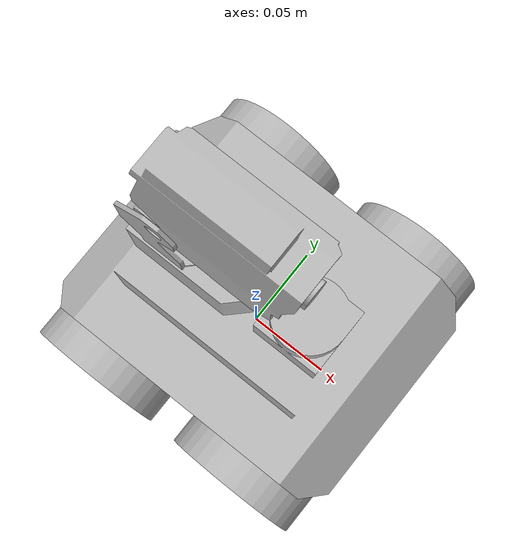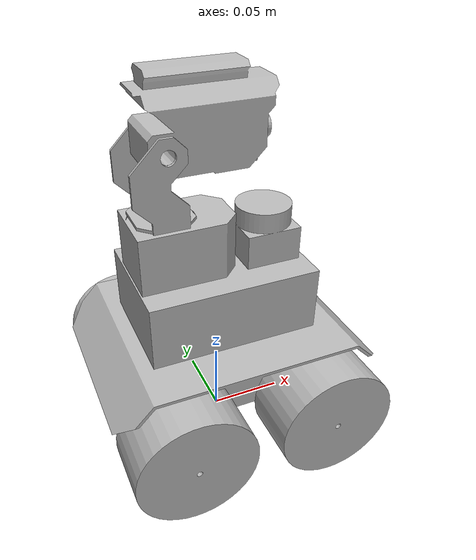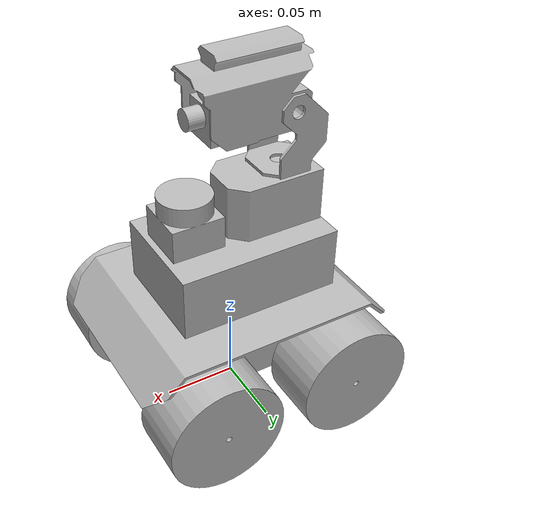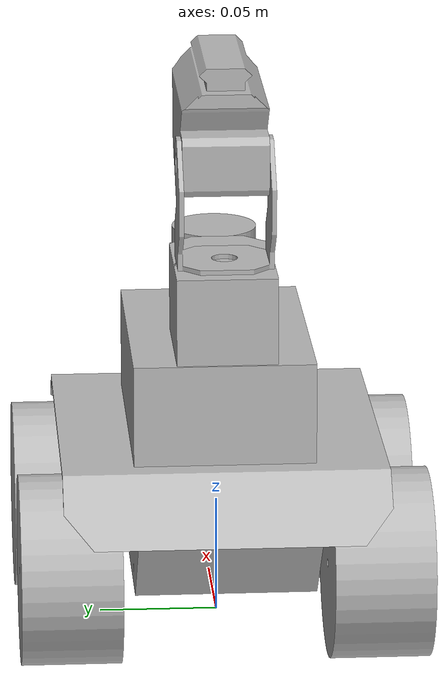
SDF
<?xml version='1.0'?>
<sdf version='1.5'>
  <model name='rasp_rover'>
   <pose>0.0 0.0 0.0 0.0 0.0 0</pose>

  <link name='base_footprint'/>

  <link name='base_link'>
    <inertial>
      <pose relative_to='base_joint'>0 0 0 0 0 0</pose>
      <mass>2.78375064359473</mass>
      <inertia>
        <ixx>0.00651567554169617</ixx>
        <ixy>-5.86655425789789E-13</ixy>
        <ixz>3.77886436056975E-05</ixz>
        <iyy>0.00933991752413667</iyy>
        <iyz>-2.53116742521487E-11</iyz>
        <izz>0.0121583506563461</izz>
       </inertia>
    </inertial>
    <visual name='base_link_visual'>
      <pose relative_to='base_joint'>0 0 0 0 0 0</pose>
      <geometry>
          <mesh>
            <scale>1 1 1</scale>
            <uri>model://ugv_description/meshes/rasp_rover/base_link.stl</uri>
          </mesh>
      </geometry>
    </visual>
    <collision name='base_link_collision'>
      <pose relative_to='base_joint'>0 0 0 0 0 0</pose>
      <geometry>
          <mesh>
            <scale>1 1 1</scale>
            <uri>model://ugv_description/meshes/rasp_rover/base_link.stl</uri>
          </mesh>
      </geometry>
    </collision>
  </link>

  <link name='base_imu_link'>
    <pose relative_to='imu_joint'>0 0 0 0 0 0</pose>
     <sensor name='ugv_imu' type='imu'>
        <always_on>true</always_on>
        <update_rate>20</update_rate>
         <imu>
          <angular_velocity>
            <x>
              <noise type='gaussian'>
                <mean>0.0</mean>
                <stddev>2e-4</stddev>
              </noise>
            </x>
            <y>
              <noise type='gaussian'>
                <mean>0.0</mean>
                <stddev>2e-4</stddev>
              </noise>
            </y>
            <z>
              <noise type='gaussian'>
                <mean>0.0</mean>
                <stddev>2e-4</stddev>
              </noise>
            </z>
          </angular_velocity>
          <linear_acceleration>
            <x>
              <noise type='gaussian'>
                <mean>0.0</mean>
                <stddev>1.7e-2</stddev>
              </noise>
            </x>
            <y>
              <noise type='gaussian'>
                <mean>0.0</mean>
                <stddev>1.7e-2</stddev>
              </noise>
            </y>
            <z>
              <noise type='gaussian'>
                <mean>0.0</mean>
                <stddev>1.7e-2</stddev>
              </noise>
            </z>
          </linear_acceleration>
        </imu>
        <plugin filename='libgazebo_ros_imu_sensor.so' name='imu_plugin'>
          <ros>
             <remapping>~/out:=imu</remapping>
          </ros>
        </plugin>
      </sensor>
  </link>

  <link name='left_up_wheel_link'>
  <pose relative_to='left_up_wheel_link_joint'>0 0 0 0 -0 0</pose>
        <inertial>
          <pose>-0 0.02679 0 0 -0 0</pose>
          <mass>0.210587</mass>
          <inertia>
            <ixx>0.000115402</ixx>
            <ixy>-1.32502e-18</ixy>
            <ixz>-4.34981e-35</ixz>
            <iyy>0.000168891</iyy>
            <iyz>2.37169e-21</iyz>
            <izz>0.000115402</izz>
          </inertia>
        </inertial>
    <visual name='left_up_wheel_link_visual'>
      <pose>0 0 0 0 -0 0</pose>
      <geometry>
          <mesh>
            <scale>1 1 1</scale>
            <uri>model://ugv_description/meshes/rasp_rover/left_up_wheel_link.stl</uri>
          </mesh>
      </geometry>
    </visual>
    <collision name='left_up_wheel_link_collision'>
      <pose>0 0 0 0 -0 0</pose>
      <geometry>
          <mesh>
            <scale>1 1 1</scale>
            <uri>model://ugv_description/meshes/rasp_rover/left_up_wheel_link.stl</uri>
          </mesh>
      </geometry>
    </collision>
  </link>

  <link name='left_down_wheel_link'>
        <pose relative_to='left_down_wheel_link_joint'>0 0 0 0 -0 0</pose>
        <inertial>
          <pose>-0 0.02679 0 0 -0 0</pose>
          <mass>0.210587</mass>
          <inertia>
            <ixx>0.000115402</ixx>
            <ixy>-1.32809e-18</ixy>
            <ixz>1.27629e-32</ixz>
            <iyy>0.000168891</iyy>
            <iyz>-5.16307e-19</iyz>
            <izz>0.000115402</izz>
          </inertia>
        </inertial>
    <visual name='left_down_wheel_link_visual'>
      <pose>0 0 0 0 -0 0</pose>
      <geometry>
          <mesh>
            <scale>1 1 1</scale>
            <uri>model://ugv_description/meshes/rasp_rover/left_down_wheel_link.stl</uri>
          </mesh>
      </geometry>
    </visual>
    <collision name='left_down_wheel_link_collision'>
      <pose>0 0 0 0 -0 0</pose>
      <geometry>
          <mesh>
            <scale>1 1 1</scale>
            <uri>model://ugv_description/meshes/rasp_rover/left_down_wheel_link.stl</uri>
          </mesh>
      </geometry>
    </collision>
  </link>

  <link name='right_up_wheel_link'>
        <pose relative_to='right_up_wheel_link_joint'>0 0 0 0 -0 0</pose>
        <inertial>
          <pose>0 -0.02679 0 0 -0 0</pose>
          <mass>0.210587</mass>
          <inertia>
            <ixx>0.000115402</ixx>
            <ixy>-1.32502e-18</ixy>
            <ixz>-4.34981e-35</ixz>
            <iyy>0.000168891</iyy>
            <iyz>2.37169e-21</iyz>
            <izz>0.000115402</izz>
          </inertia>
        </inertial>
    <visual name='right_up_wheel_link_visual'>
      <pose>0 0 0 0 -0 0</pose>
      <geometry>
          <mesh>
            <scale>1 1 1</scale>
            <uri>model://ugv_description/meshes/rasp_rover/right_up_wheel_link.stl</uri>
          </mesh>
      </geometry>
    </visual>
    <collision name='right_up_wheel_link_collision'>
      <pose>0 0 0 0 -0 0</pose>
      <geometry>
          <mesh>
            <scale>1 1 1</scale>
            <uri>model://ugv_description/meshes/rasp_rover/right_up_wheel_link.stl</uri>
          </mesh>
      </geometry>
    </collision>
  </link>

  <link name='right_down_wheel_link'>
        <pose relative_to='right_down_wheel_link_joint'>0 0 0 0 -0 0</pose>
        <inertial>
          <pose>0 -0.02679 0 0 -0 0</pose>
          <mass>0.210587</mass>
          <inertia>
            <ixx>0.000115402</ixx>
            <ixy>-1.32502e-18</ixy>
            <ixz>1.27637e-32</ixz>
            <iyy>0.000168891</iyy>
            <iyz>-5.18688e-19</iyz>
            <izz>0.000115402</izz>
          </inertia>
        </inertial>
    <visual name='right_down_wheel_link_visual'>
      <pose>0 0 0 0 -0 0</pose>
      <geometry>
          <mesh>
            <scale>1 1 1</scale>
            <uri>model://ugv_description/meshes/rasp_rover/right_down_wheel_link.stl</uri>
          </mesh>
      </geometry>
    </visual>
    <collision name='right_down_wheel_link_collision'>
      <pose>0 0 0 0 -0 0</pose>
      <geometry>
          <mesh>
            <scale>1 1 1</scale>
            <uri>model://ugv_description/meshes/rasp_rover/right_down_wheel_link.stl</uri>
          </mesh>
      </geometry>
    </collision>
  </link>

  <link name='base_lidar_link'>
  <pose relative_to='base_lidar_link_joint'>0 0 0 0 -0 0</pose>
    <inertial>
      <pose>0 0 0 0 -0 0</pose>
      <mass>0.0418000091653573</mass>
      <inertia>
        <ixx>8.26853377699878E-06</ixx>
        <ixy>-2.32283058129169E-22</ixy>
        <ixz>-3.51417304718746E-22</ixz>
        <iyy>8.26853377699876E-06</iyy>
        <iyz>2.66754484573224E-23</iyz>
        <izz>8.32524607487378E-06</izz>
       </inertia>
    </inertial>
    <visual name='base_lidar_link_visual'>
      <pose>0 0 0 0 -0 0</pose>
      <geometry>
          <mesh>
            <scale>1 1 1</scale>
            <uri>model://ugv_description/meshes/rasp_rover/base_lidar_link.stl</uri>
          </mesh>
      </geometry>
    </visual>
    <collision name='base_lidar_link_collision'>
      <pose>0 0 0 0 -0 0</pose>
      <geometry>
          <mesh>
            <scale>1 1 1</scale>
            <uri>model://ugv_description/meshes/rasp_rover/base_lidar_link.stl</uri>
          </mesh>
      </geometry>
    </collision>

    <sensor name='hls_lfcd_lds' type='ray'>
        <always_on>true</always_on>
        <visualize>true</visualize>
        <pose>0 0 0.04 0 -0 0</pose>
        <update_rate>10</update_rate>
        <ray>
          <scan>
            <horizontal>
              <samples>360</samples>
              <resolution>1.000000</resolution>
              <min_angle>0.000000</min_angle>
              <max_angle>6.280000</max_angle>
            </horizontal>
          </scan>
          <range>
            <min>0.160000</min>
            <max>3.5</max>
            <resolution>0.015000</resolution>
          </range>
          <noise>
            <type>gaussian</type>
            <mean>0.0</mean>
            <stddev>0.01</stddev>
          </noise>
        </ray>
        <plugin name='ugv_laserscan' filename='libgazebo_ros_ray_sensor.so'>
          <ros>
            <remapping>~/out:=scan</remapping>
          </ros>
          <output_type>sensor_msgs/LaserScan</output_type>
          <frame_name>base_lidar_link</frame_name>
        </plugin>
      </sensor>
  </link>

  <link name='pt_base_link'>
  <pose relative_to='pt_base_link_joint'>0 0 0 0 -0 0</pose>
    <inertial>
      <pose>0 0 0 0 -0 0</pose>
      <mass>0.109518186442022</mass>
      <inertia>
        <ixx>3.30168147078049E-05</ixx>
        <ixy>-2.724587071518E-18</ixy>
        <ixz>-2.93137934608679E-06</ixz>
        <iyy>5.1580984319637E-05</iyy>
        <iyz>-6.32568066032632E-18</iyz>
        <izz>4.86101329827052E-05</izz>
       </inertia>
    </inertial>
    <visual name='pt_base_link_visual'>
      <pose>0 0 0 0 -0 0</pose>
      <geometry>
          <mesh>
            <scale>1 1 1</scale>
            <uri>model://ugv_description/meshes/rasp_rover/pt_base_link.stl</uri>
          </mesh>
      </geometry>
    </visual>
    <collision name='pt_base_link_collision'>
      <pose>0 0 0 0 -0 0</pose>
      <geometry>
          <mesh>
            <scale>1 1 1</scale>
            <uri>model://ugv_description/meshes/rasp_rover/pt_base_link.stl</uri>
          </mesh>
      </geometry>
    </collision>
  </link>

  <link name='pt_link1'>
  <pose relative_to='pt_base_link_to_pt_link1'>0 0 0 0 -0 0</pose>
    <inertial>
    <pose>-0.003381 0 0.01761 0 -0 0</pose>
      <mass>0.00710917409663916</mass>
      <inertia>
        <ixx>3.89716322571471E-06</ixx>
        <ixy>-3.20607036006508E-19</ixy>
        <ixz>2.32919366130509E-07</ixz>
        <iyy>2.4980668051168E-06</iyy>
        <iyz>-2.87650001968868E-19</iyz>
        <izz>2.60402792588347E-06</izz>
      </inertia>
    </inertial>
    <visual name='pt_link1_visual'>
      <pose>0 0 0 0 -0 0</pose>
      <geometry>
          <mesh>
            <scale>1 1 1</scale>
            <uri>model://ugv_description/meshes/rasp_rover/pt_link1.stl</uri>
          </mesh>
      </geometry>
    </visual>
    <collision name='pt_link1_collision'>
      <pose>0 0 0 0 -0 0</pose>
      <geometry>
          <mesh>
            <scale>1 1 1</scale>
            <uri>model://ugv_description/meshes/rasp_rover/pt_link1.stl</uri>
          </mesh>
      </geometry>
    </collision>
  </link>

  <link name='pt_link2'>
        <pose relative_to='pt_link1_to_pt_link2'>0 0 0 0 -0 0</pose>
        <inertial>
          <pose>0.023763 0.01126 0.02 0 -0 0</pose>
          <mass>0.103286</mass>
          <inertia>
            <ixx>3.20126e-05</ixx>
            <ixy>1.18182e-06</ixy>
            <ixz>8.05374e-13</ixz>
            <iyy>4.3875e-05</iyy>
            <iyz>-2.49463e-13</iyz>
            <izz>5.67494e-05</izz>
          </inertia>
        </inertial>
    <visual name='pt_link2_visual'>
      <pose>0 0 0 0 -0 0</pose>
      <geometry>
          <mesh>
            <scale>1 1 1</scale>
            <uri>model://ugv_description/meshes/rasp_rover/pt_link2.stl</uri>
          </mesh>
      </geometry>
    </visual>
    <collision name='pt_link2_collision'>
      <pose>0 0 0 0 -0 0</pose>
      <geometry>
          <mesh>
            <scale>1 1 1</scale>
            <uri>model://ugv_description/meshes/rasp_rover/pt_link2.stl</uri>
          </mesh>
      </geometry>
    </collision>
  </link>

  <link name='pt_camera_link'>
  <pose relative_to='pt_link2_to_pt_camera_link'>0 0 0 0 -0 0</pose>
    <inertial>
      <pose>0 0 0 0 -0 0</pose>
      <mass>0.00623651844028495</mass>
      <inertia>
        <ixx>5.11295942352593E-07</ixx>
        <ixy>3.46495200123478E-22</ixy>
        <ixz>-4.00917493406375E-08</ixz>
        <iyy>3.99078324787848E-07</iyy>
        <iyz>1.31404415819798E-22</iyz>
        <izz>4.02518684222241E-07</izz>
      </inertia>
    </inertial>
    <visual name='pt_camera_link_visual'>
      <pose>0 0 0 0 -0 0</pose>
      <geometry>
          <mesh>
            <scale>1 1 1</scale>
            <uri>model://ugv_description/meshes/rasp_rover/pt_camera_link.stl</uri>
          </mesh>
      </geometry>
    </visual>
    <collision name='pt_camera_link_collision'>
      <pose>0 0 0 0 -0 0</pose>
      <geometry>
          <mesh>
            <scale>1 1 1</scale>
            <uri>model://ugv_description/meshes/rasp_rover/pt_camera_link.stl</uri>
          </mesh>
      </geometry>
    </collision>
      <sensor name="pt_camera" type="camera">
        <pose>0 0 0 0 -0 0</pose>
        <always_on>true</always_on>
        <visualize>true</visualize>
        <update_rate>30</update_rate>
        <camera name="intel_realsense_r200">
          <horizontal_fov>1.02974</horizontal_fov>
          <image>
            <width>640</width>
            <height>480</height>
            <format>R8G8B8</format>
          </image>
          <clip>
            <near>0.02</near>
            <far>300</far>
          </clip>
          <noise>
            <type>gaussian</type>
            <mean>0.0</mean>
            <stddev>0.007</stddev>
          </noise>
        </camera>
          <plugin name="pt_camera_driver" filename="libgazebo_ros_camera.so">
            <ros>
            </ros>
          </plugin>
      </sensor>
  </link>

  <joint name='base_joint' type='fixed'>
    <pose relative_to='base_footprint'>0.00046 0 0.03 0 -0 0</pose>
    <parent>base_footprint</parent>
    <child>base_link</child>
  </joint>

  <joint name='imu_joint' type='fixed'>
      <parent>base_footprint</parent>
      <child>base_imu_link</child>
      <pose relative_to='base_footprint'>0.00046 0 0.08 0 -0 0</pose>
  </joint>

  <joint name='left_up_wheel_link_joint' type='revolute'>
    <pose relative_to='base_footprint'>0.049926 0.03801 0.036748 0 -0 0</pose>
      <parent>base_footprint</parent>
    <child>left_up_wheel_link</child>
       <axis>
        <xyz>0 0 -1</xyz>
      </axis>
  </joint>

  <joint name='left_down_wheel_link_joint' type='revolute'>
    <pose relative_to='base_footprint'>-0.047072 0.03801 0.036748 0 -0 0</pose>
      <parent>base_footprint</parent>
    <child>left_down_wheel_link</child>
       <axis>
        <xyz>0 0 -1</xyz>
      </axis>
  </joint>

  <joint name='right_up_wheel_link_joint' type='revolute'>
    <pose relative_to='base_footprint'>0.049926 -0.03801 0.036748 0 -0 0</pose>
      <parent>base_footprint</parent>
    <child>right_up_wheel_link</child>
       <axis>
        <xyz>0 0 -1</xyz>
      </axis>
  </joint>

  <joint name='right_down_wheel_link_joint' type='revolute'>
    <pose relative_to='base_footprint'>-0.047072 -0.03801 0.036748 0 -0 0</pose>
      <parent>base_footprint</parent>
    <child>right_down_wheel_link</child>
       <axis>
        <xyz>0 0 -1</xyz>
      </axis>
  </joint>

  <joint name='base_lidar_link_joint' type='fixed'>
    <pose relative_to='base_link'>0.0316958390518911 -0.00101477740749894 0.1276480280297308 0 -0 0</pose>
      <parent>base_footprint</parent>
    <child>base_lidar_link</child>
       <axis>
        <xyz>0 0 1</xyz>
      </axis>
  </joint>

  <joint name='pt_base_link_joint' type='fixed'>
    <pose relative_to='base_footprint'>-0.02525 -0.001015 0.127648 0 -0 0</pose>
      <parent>base_footprint</parent>
    <child>pt_base_link</child>
       <axis>
        <xyz>0 0 1</xyz>
      </axis>
  </joint>

  <joint name='pt_base_link_to_pt_link1' type='fixed'>
    <pose relative_to='base_footprint'>-0.035401 -0.001015 0.165948 0 -0 0</pose>
      <parent>pt_base_link</parent>
    <child>pt_link1</child>
       <axis>
        <xyz>0 0 -1</xyz>
      </axis>
  </joint>

  <joint name='pt_link1_to_pt_link2' type='fixed'>
    <pose relative_to='pt_link1'>0 0.02 0.043003 1.5708 -0 0</pose>
      <parent>pt_link1</parent>
    <child>pt_link2</child>
       <axis>
        <xyz>0 -1 0</xyz>
      </axis>
  </joint>

  <joint name='pt_link2_to_pt_camera_link' type='fixed'>
    <pose relative_to='pt_link2'>0.047686 -0.000569 0.02 -1.5708 0 0</pose>
      <parent>pt_link2</parent>
    <child>pt_camera_link</child>
       <axis>
        <xyz>0 0 1</xyz>
      </axis>
  </joint>

     <static>0</static>

  <plugin name="skid_steer_drive_controller" filename="libgazebo_ros_diff_drive.so">
    <updateRate>20</updateRate>

    <!-- Number of wheel pairs -->
    <num_wheel_pairs>2</num_wheel_pairs>

    <!-- wheels0 -->
    <left_joint>left_up_wheel_link_joint</left_joint>
    <right_joint>right_up_wheel_link_joint</right_joint>

    <!-- wheels1-->
    <left_joint>left_down_wheel_link_joint</left_joint>
    <right_joint>right_down_wheel_link_joint</right_joint>

    <!-- kinematics -->
    <wheel_separation>0.125</wheel_separation>
    <wheel_separation>0.125</wheel_separation>

    <wheel_diameter>0.05</wheel_diameter>
    <wheel_diameter>0.05</wheel_diameter>

    <!-- limits -->
    <max_wheel_torque>20</max_wheel_torque>
    <max_wheel_acceleration>1.0</max_wheel_acceleration>

    <!-- output -->
    <publish_odom>true</publish_odom>
    <publish_odom_tf>true</publish_odom_tf>
    <publish_wheel_tf>false</publish_wheel_tf>
    <command_topic>cmd_vel</command_topic>
    <odometry_topic>odom</odometry_topic>
    <odometry_frame>odom</odometry_frame>
    <robot_base_frame>base_footprint</robot_base_frame>
    </plugin>

    <plugin name="gazebo_ros_joint_state_publisher"
    filename="libgazebo_ros_joint_state_publisher.so">

  <ros>
    <!-- Add a namespace -->
    <!-- Remap the default topic -->
    <remapping>joint_states:=joint_states</remapping>
  </ros>
  <!-- Update rate in Hertz -->
  <update_rate>2</update_rate>
  <!-- Name of joints in the model whose states will be published. -->
  <joint_name>left_up_wheel_link_joint</joint_name>
  <joint_name>right_up_wheel_link_joint</joint_name>
  <joint_name>left_down_wheel_link_joint</joint_name>
  <joint_name>right_down_wheel_link_joint</joint_name>
  </plugin>
  </model>
</sdf>
